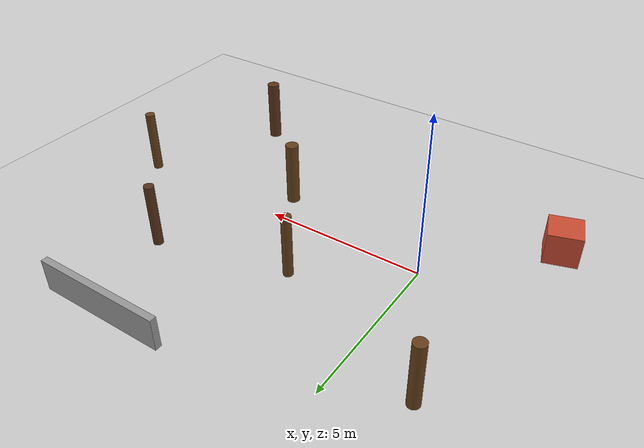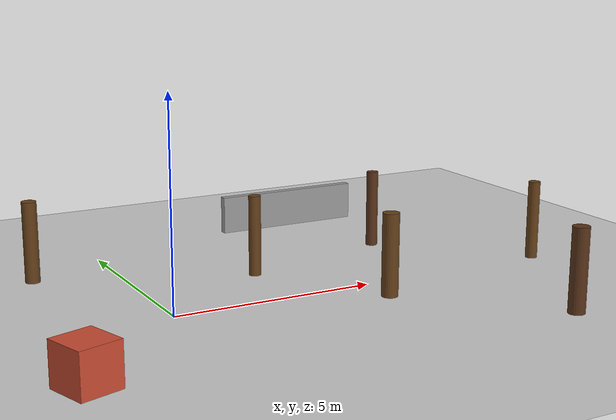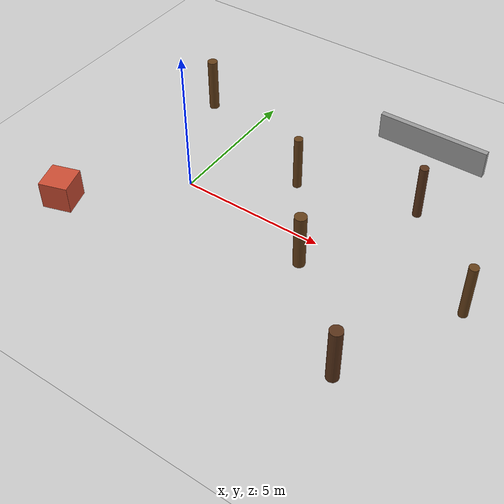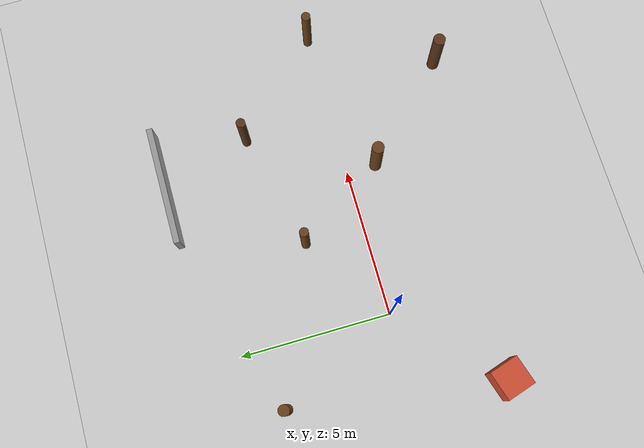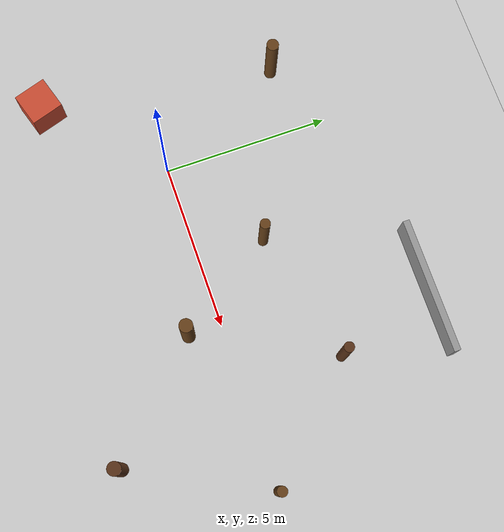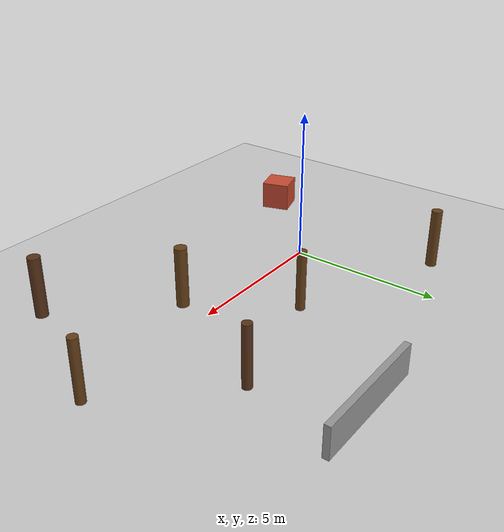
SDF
<?xml version="1.0" ?>
<sdf version="1.6">
  <world name="forest">
    <include>
      <uri>model://ground_plane</uri>
    </include>
    <include>
      <uri>model://sun</uri>
    </include>

    <!-- Trees as cylinders -->
    <model name="tree_1">
      <static>true</static>
      <pose>3 2 1 0 0 0</pose>
      <link name="trunk">
        <visual name="v"><geometry><cylinder><radius>0.15</radius><length>2</length></cylinder></geometry>
        <material><ambient>0.4 0.25 0.1 1</ambient></material></visual>
        <collision name="c"><geometry><cylinder><radius>0.15</radius><length>2</length></cylinder></geometry></collision>
      </link>
    </model>

    <model name="tree_2">
      <static>true</static>
      <pose>5 -1 1 0 0 0</pose>
      <link name="trunk">
        <visual name="v"><geometry><cylinder><radius>0.2</radius><length>2</length></cylinder></geometry>
        <material><ambient>0.4 0.25 0.1 1</ambient></material></visual>
        <collision name="c"><geometry><cylinder><radius>0.2</radius><length>2</length></cylinder></geometry></collision>
      </link>
    </model>

    <model name="tree_3">
      <static>true</static>
      <pose>7 3 1 0 0 0</pose>
      <link name="trunk">
        <visual name="v"><geometry><cylinder><radius>0.15</radius><length>2</length></cylinder></geometry>
        <material><ambient>0.35 0.2 0.1 1</ambient></material></visual>
        <collision name="c"><geometry><cylinder><radius>0.15</radius><length>2</length></cylinder></geometry></collision>
      </link>
    </model>

    <model name="tree_4">
      <static>true</static>
      <pose>-2 4 1 0 0 0</pose>
      <link name="trunk">
        <visual name="v"><geometry><cylinder><radius>0.18</radius><length>2</length></cylinder></geometry>
        <material><ambient>0.4 0.25 0.1 1</ambient></material></visual>
        <collision name="c"><geometry><cylinder><radius>0.18</radius><length>2</length></cylinder></geometry></collision>
      </link>
    </model>

    <model name="tree_5">
      <static>true</static>
      <pose>10 0 1 0 0 0</pose>
      <link name="trunk">
        <visual name="v"><geometry><cylinder><radius>0.15</radius><length>2</length></cylinder></geometry>
        <material><ambient>0.4 0.25 0.1 1</ambient></material></visual>
        <collision name="c"><geometry><cylinder><radius>0.15</radius><length>2</length></cylinder></geometry></collision>
      </link>
    </model>

    <model name="tree_6">
      <static>true</static>
      <pose>8 -4 1 0 0 0</pose>
      <link name="trunk">
        <visual name="v"><geometry><cylinder><radius>0.2</radius><length>2</length></cylinder></geometry>
        <material><ambient>0.35 0.2 0.1 1</ambient></material></visual>
        <collision name="c"><geometry><cylinder><radius>0.2</radius><length>2</length></cylinder></geometry></collision>
      </link>
    </model>

    <model name="wall_1">
      <static>true</static>
      <pose>6 6 0.5 0 0 0</pose>
      <link name="link">
        <visual name="v"><geometry><box><size>4 0.2 1</size></box></geometry>
        <material><ambient>0.6 0.6 0.6 1</ambient></material></visual>
        <collision name="c"><geometry><box><size>4 0.2 1</size></box></geometry></collision>
      </link>
    </model>

    <model name="box_1">
      <static>true</static>
      <pose>-3 -3 0.5 0 0 0.3</pose>
      <link name="link">
        <visual name="v"><geometry><box><size>1 1 1</size></box></geometry>
        <material><ambient>0.8 0.3 0.2 1</ambient></material></visual>
        <collision name="c"><geometry><box><size>1 1 1</size></box></geometry></collision>
      </link>
    </model>

  </world>
</sdf>
